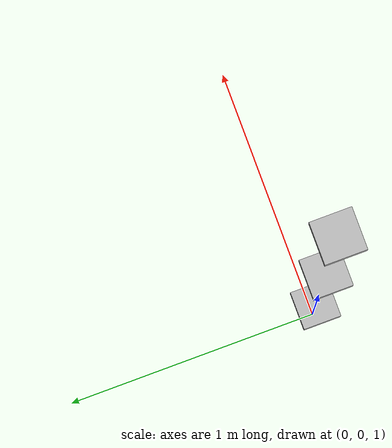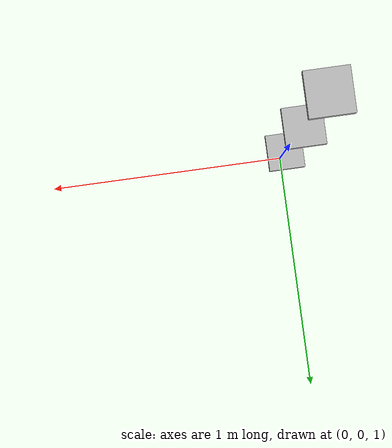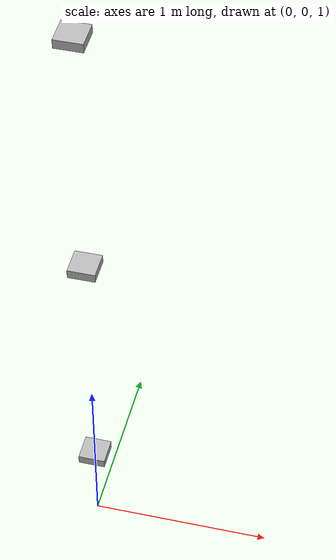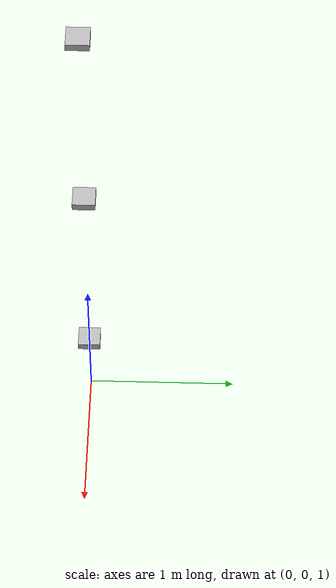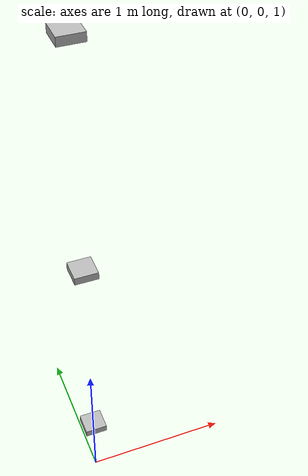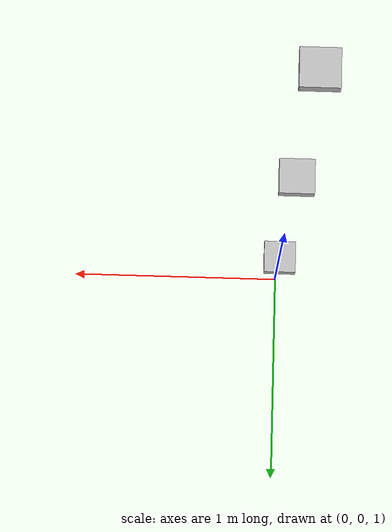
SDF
<?xml version='1.0'?>
<sdf version="1.7">
  <model name="box">
    <pose>0 0.0 1.5 0 0 0</pose>
    <static>false</static>
    <link name="Box1">
      <inertial>
        <mass>1.0</mass>
        <inertia> <!-- inertias are tricky to compute -->
          <!-- http://gazebosim.org/tutorials?tut=inertia&cat=build_robot -->
          <ixx>0.083</ixx>       <!-- for a box: ixx = 0.083 * mass * (y*y + z*z) -->
          <ixy>0.0</ixy>         <!-- for a box: ixy = 0 -->
          <ixz>0.0</ixz>         <!-- for a box: ixz = 0 -->
          <iyy>0.083</iyy>       <!-- for a box: iyy = 0.083 * mass * (x*x + z*z) -->
          <iyz>0.0</iyz>         <!-- for a box: iyz = 0 -->
          <izz>0.083</izz>       <!-- for a box: izz = 0.083 * mass * (x*x + y*y) -->
        </inertia>
      </inertial>
      <collision name="collision">
        <geometry>
          <box>
            <size>0.15 0.15 0.05</size>
          </box>
        </geometry>
        <drake:proximity_properties>
          <drake:compliant_hydroelastic/>
          <drake:hydroelastic_modulus> 3.0e6 </drake:hydroelastic_modulus>
          <drake:mesh_resolution_hint> 1 </drake:mesh_resolution_hint>
          <drake:mu_dynamic> 0.3 </drake:mu_dynamic>
          <drake:mu_static> 0.3 </drake:mu_static>
          <drake:hunt_crossley_dissipation>
            3.0
          </drake:hunt_crossley_dissipation>
        </drake:proximity_properties>
      </collision>
      <visual name="visual">
        <geometry>
          <box>
            <size>0.15 0.15 0.05</size>
          </box>
        </geometry>
      </visual>
    </link>
  </model>
  <model name="box1">
    <pose>0 0.0 3 0 0 0</pose>
    <static>false</static>
    <link name="Box1">
      <inertial>
        <mass>1.0</mass>
        <inertia> <!-- inertias are tricky to compute -->
          <!-- http://gazebosim.org/tutorials?tut=inertia&cat=build_robot -->
          <ixx>0.083</ixx>       <!-- for a box: ixx = 0.083 * mass * (y*y + z*z) -->
          <ixy>0.0</ixy>         <!-- for a box: ixy = 0 -->
          <ixz>0.0</ixz>         <!-- for a box: ixz = 0 -->
          <iyy>0.083</iyy>       <!-- for a box: iyy = 0.083 * mass * (x*x + z*z) -->
          <iyz>0.0</iyz>         <!-- for a box: iyz = 0 -->
          <izz>0.083</izz>       <!-- for a box: izz = 0.083 * mass * (x*x + y*y) -->
        </inertia>
      </inertial>
      <collision name="collision">
        <geometry>
          <box>
            <size>0.15 0.15 0.05</size>
          </box>
        </geometry>
        <drake:proximity_properties>
          <drake:compliant_hydroelastic/>
          <drake:hydroelastic_modulus> 3.0e6 </drake:hydroelastic_modulus>
          <drake:mesh_resolution_hint> 1 </drake:mesh_resolution_hint>
          <drake:mu_dynamic> 0.3 </drake:mu_dynamic>
          <drake:mu_static> 0.3 </drake:mu_static>
          <drake:hunt_crossley_dissipation>
            3.0
          </drake:hunt_crossley_dissipation>
        </drake:proximity_properties>
      </collision>
      <visual name="visual">
        <geometry>
          <box>
            <size>0.15 0.15 0.05</size>
          </box>
        </geometry>
      </visual>
    </link>
  </model>
  <model name="box2">
    <pose>0 0.0 4.5 0 0 0</pose>
    <static>false</static>
    <link name="Box1">
      <inertial>
        <mass>1.0</mass>
        <inertia> <!-- inertias are tricky to compute -->
          <!-- http://gazebosim.org/tutorials?tut=inertia&cat=build_robot -->
          <ixx>0.083</ixx>       <!-- for a box: ixx = 0.083 * mass * (y*y + z*z) -->
          <ixy>0.0</ixy>         <!-- for a box: ixy = 0 -->
          <ixz>0.0</ixz>         <!-- for a box: ixz = 0 -->
          <iyy>0.083</iyy>       <!-- for a box: iyy = 0.083 * mass * (x*x + z*z) -->
          <iyz>0.0</iyz>         <!-- for a box: iyz = 0 -->
          <izz>0.083</izz>       <!-- for a box: izz = 0.083 * mass * (x*x + y*y) -->
        </inertia>
      </inertial>
      <collision name="collision">
        <geometry>
          <box>
            <size>0.15 0.15 0.05</size>
          </box>
        </geometry>
        <drake:proximity_properties>
          <drake:compliant_hydroelastic/>
          <drake:hydroelastic_modulus> 3.0e6 </drake:hydroelastic_modulus>
          <drake:mesh_resolution_hint> 1 </drake:mesh_resolution_hint>
          <drake:mu_dynamic> 0.3 </drake:mu_dynamic>
          <drake:mu_static> 0.3 </drake:mu_static>
          <drake:hunt_crossley_dissipation>
            3.0
          </drake:hunt_crossley_dissipation>
        </drake:proximity_properties>
      </collision>
      <visual name="visual">
        <geometry>
          <box>
            <size>0.15 0.15 0.05</size>
          </box>
        </geometry>
      </visual>
    </link>
  </model>
</sdf>
